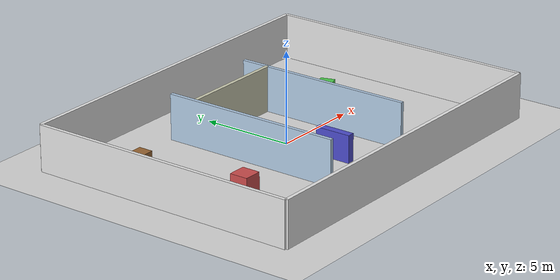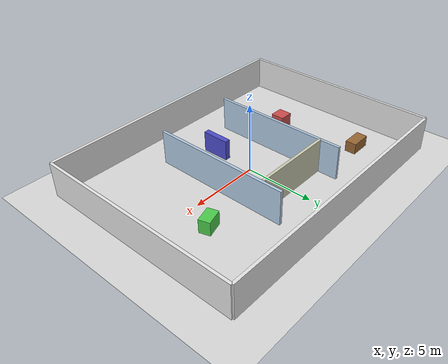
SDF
<?xml version="1.0" ?>
<sdf version="1.7">
  <world name="tracer_classroom">

    <plugin filename="ignition-gazebo-physics-system"
            name="ignition::gazebo::systems::Physics"/>
    <plugin filename="ignition-gazebo-user-commands-system"
            name="ignition::gazebo::systems::UserCommands"/>
    <plugin filename="ignition-gazebo-scene-broadcaster-system"
            name="ignition::gazebo::systems::SceneBroadcaster"/>
    <plugin filename="ignition-gazebo-sensors-system"
        name="ignition::gazebo::systems::Sensors">
      <render_engine>ogre2</render_engine>
    </plugin>

    <gravity>0 0 -9.8</gravity>

    <scene>
      <ambient>0.6 0.6 0.6 1</ambient>
      <background>0.8 0.8 0.8 1</background>
      <shadows>false</shadows>
    </scene>

    <light type="directional" name="sun">
      <cast_shadows>true</cast_shadows>
      <pose>0 0 20 0 0 0</pose>
      <diffuse>1 1 1 1</diffuse>
      <specular>0.3 0.3 0.3 1</specular>
      <attenuation>
        <range>1000</range>
        <constant>0.9</constant>
        <linear>0.01</linear>
        <quadratic>0.001</quadratic>
      </attenuation>
      <direction>-0.5 0.1 -0.9</direction>
    </light>

    <model name="ground_plane">
      <static>true</static>
      <link name="link">
        <collision name="collision">
          <geometry>
            <plane>
              <normal>0 0 1</normal>
              <size>30 30</size>
            </plane>
          </geometry>
        </collision>
        <visual name="visual">
          <geometry>
            <plane>
              <normal>0 0 1</normal>
              <size>30 30</size>
            </plane>
          </geometry>
          <material>
            <ambient>0.85 0.85 0.85 1</ambient>
            <diffuse>0.85 0.85 0.85 1</diffuse>
          </material>
        </visual>
      </link>
    </model>

    <!-- Paredes exteriores -->
    <model name="wall_north">
      <static>true</static>
      <pose>0 7.5 1.25 0 0 0</pose>
      <link name="link">
        <collision name="collision">
          <geometry><box><size>20 0.2 2.5</size></box></geometry>
        </collision>
        <visual name="visual">
          <geometry><box><size>20 0.2 2.5</size></box></geometry>
          <material><ambient>0.9 0.9 0.9 1</ambient><diffuse>0.9 0.9 0.9 1</diffuse></material>
        </visual>
      </link>
    </model>

    <model name="wall_south">
      <static>true</static>
      <pose>0 -7.5 1.25 0 0 0</pose>
      <link name="link">
        <collision name="collision">
          <geometry><box><size>20 0.2 2.5</size></box></geometry>
        </collision>
        <visual name="visual">
          <geometry><box><size>20 0.2 2.5</size></box></geometry>
          <material><ambient>0.9 0.9 0.9 1</ambient><diffuse>0.9 0.9 0.9 1</diffuse></material>
        </visual>
      </link>
    </model>

    <model name="wall_east">
      <static>true</static>
      <pose>10 0 1.25 0 0 0</pose>
      <link name="link">
        <collision name="collision">
          <geometry><box><size>0.2 15 2.5</size></box></geometry>
        </collision>
        <visual name="visual">
          <geometry><box><size>0.2 15 2.5</size></box></geometry>
          <material><ambient>0.9 0.9 0.9 1</ambient><diffuse>0.9 0.9 0.9 1</diffuse></material>
        </visual>
      </link>
    </model>

    <model name="wall_west">
      <static>true</static>
      <pose>-10 0 1.25 0 0 0</pose>
      <link name="link">
        <collision name="collision">
          <geometry><box><size>0.2 15 2.5</size></box></geometry>
        </collision>
        <visual name="visual">
          <geometry><box><size>0.2 15 2.5</size></box></geometry>
          <material><ambient>0.9 0.9 0.9 1</ambient><diffuse>0.9 0.9 0.9 1</diffuse></material>
        </visual>
      </link>
    </model>

    <!-- Paredes interiores: pasillos y sala -->
    <model name="inner_wall_1">
      <static>true</static>
      <pose>-3 0 1.25 0 0 0</pose>
      <link name="link">
        <collision name="collision">
          <geometry><box><size>0.2 10 2.5</size></box></geometry>
        </collision>
        <visual name="visual">
          <geometry><box><size>0.2 10 2.5</size></box></geometry>
          <material><ambient>0.7 0.8 0.9 1</ambient><diffuse>0.7 0.8 0.9 1</diffuse></material>
        </visual>
      </link>
    </model>

    <model name="inner_wall_2">
      <static>true</static>
      <pose>3 0 1.25 0 0 0</pose>
      <link name="link">
        <collision name="collision">
          <geometry><box><size>0.2 10 2.5</size></box></geometry>
        </collision>
        <visual name="visual">
          <geometry><box><size>0.2 10 2.5</size></box></geometry>
          <material><ambient>0.7 0.8 0.9 1</ambient><diffuse>0.7 0.8 0.9 1</diffuse></material>
        </visual>
      </link>
    </model>

    <model name="inner_wall_3">
      <static>true</static>
      <pose>0 3.5 1.25 0 0 1.5708</pose>
      <link name="link">
        <collision name="collision">
          <geometry><box><size>0.2 6 2.5</size></box></geometry>
        </collision>
        <visual name="visual">
          <geometry><box><size>0.2 6 2.5</size></box></geometry>
          <material><ambient>0.8 0.8 0.7 1</ambient><diffuse>0.8 0.8 0.7 1</diffuse></material>
        </visual>
      </link>
    </model>

    <!-- Obstáculos -->
    <model name="box_1">
      <static>true</static>
      <pose>-6 -2 0.5 0 0 0</pose>
      <link name="link">
        <collision name="collision">
          <geometry><box><size>1 1 1</size></box></geometry>
        </collision>
        <visual name="visual">
          <geometry><box><size>1 1 1</size></box></geometry>
          <material><ambient>0.8 0.3 0.3 1</ambient><diffuse>0.8 0.3 0.3 1</diffuse></material>
        </visual>
      </link>
    </model>

    <model name="box_2">
      <static>true</static>
      <pose>6 2 0.5 0 0 0.3</pose>
      <link name="link">
        <collision name="collision">
          <geometry><box><size>1.2 0.8 1</size></box></geometry>
        </collision>
        <visual name="visual">
          <geometry><box><size>1.2 0.8 1</size></box></geometry>
          <material><ambient>0.3 0.8 0.3 1</ambient><diffuse>0.3 0.8 0.3 1</diffuse></material>
        </visual>
      </link>
    </model>

    <model name="narrow_obstacle_1">
      <static>true</static>
      <pose>0 -3 0.75 0 0 0</pose>
      <link name="link">
        <collision name="collision">
          <geometry><box><size>0.4 2.0 1.5</size></box></geometry>
        </collision>
        <visual name="visual">
          <geometry><box><size>0.4 2.0 1.5</size></box></geometry>
          <material><ambient>0.3 0.3 0.8 1</ambient><diffuse>0.3 0.3 0.8 1</diffuse></material>
        </visual>
      </link>
    </model>

    <model name="table_1">
      <static>true</static>
      <pose>-7 4 0.4 0 0 0</pose>
      <link name="link">
        <collision name="collision">
          <geometry><box><size>1.5 0.8 0.8</size></box></geometry>
        </collision>
        <visual name="visual">
          <geometry><box><size>1.5 0.8 0.8</size></box></geometry>
          <material><ambient>0.6 0.4 0.2 1</ambient><diffuse>0.6 0.4 0.2 1</diffuse></material>
        </visual>
      </link>
    </model>

  </world>
</sdf>
